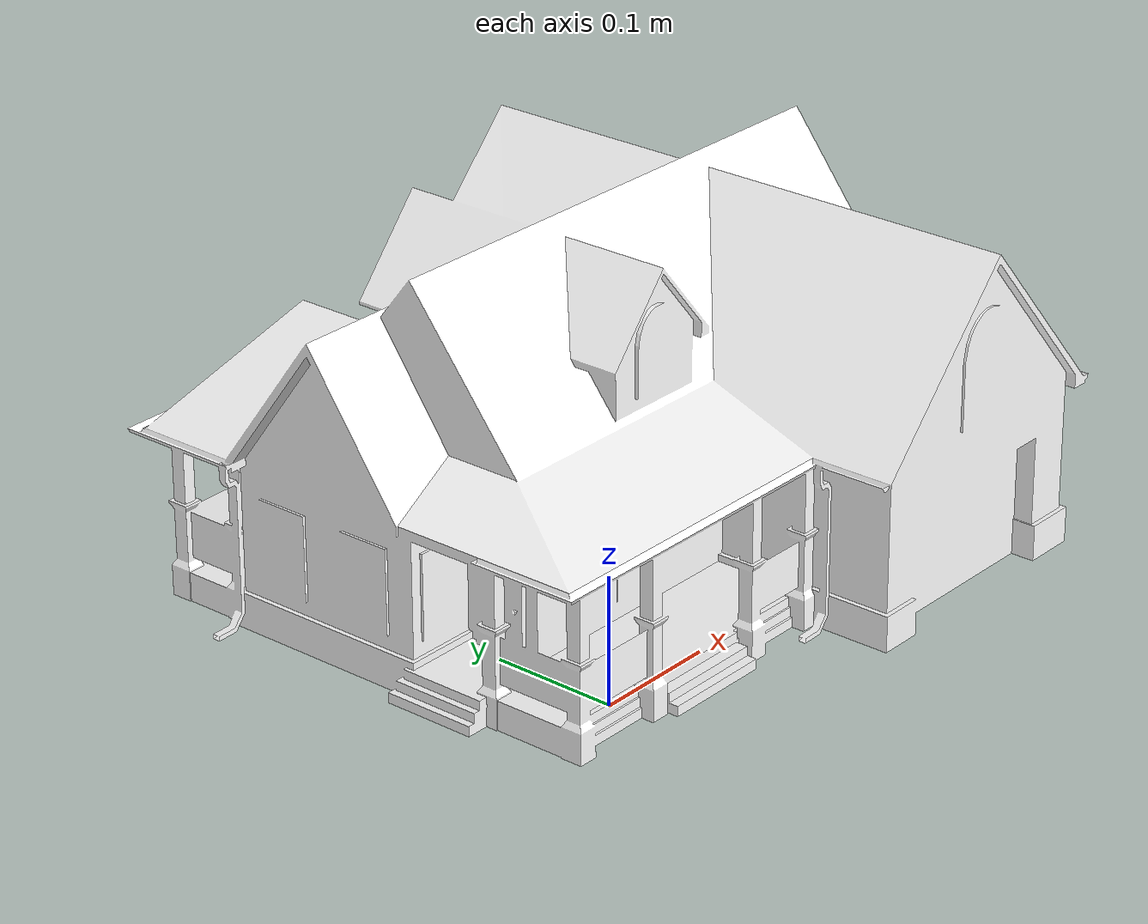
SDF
<?xml version="1.0" ?>
<sdf version="1.5">
  <model name="House">
    <link name="link">
      <pose>0 0 0.115 0 0 0</pose>
      <inertial>
        <mass>0.390</mass>
        <inertia>
          <ixx>0.00058</ixx>
          <ixy>0</ixy>
          <ixz>0</ixz>
          <iyy>0.00058</iyy>
          <iyz>0</iyz>
          <izz>0.00019</izz>
        </inertia>
      </inertial>
      <collision name="collision">
        <geometry>
          <mesh>
            <uri>model://house_1/meshes/house_1.dae</uri>
            <scale>0.5 0.5 0.5</scale>
          </mesh>
        </geometry>
      </collision>
      <visual name="visual">
        <geometry>
          <mesh>
            <uri>model://house_1/meshes/house_1.dae</uri>
            <scale>0.5 0.5 0.5</scale>
          </mesh>
        </geometry>
        <material>
          <script>
            <uri>model://house_1/materials/scripts</uri>
            <uri>model://house_1/materials/textures</uri>
            <name>House_1/Diffuse</name>
          </script>
          <shader type="normal_map_tangent_space">
            <normal_map>House_1_Normal.png</normal_map>
          </shader>
        </material>
      </visual>
    </link>
  </model>
</sdf>
